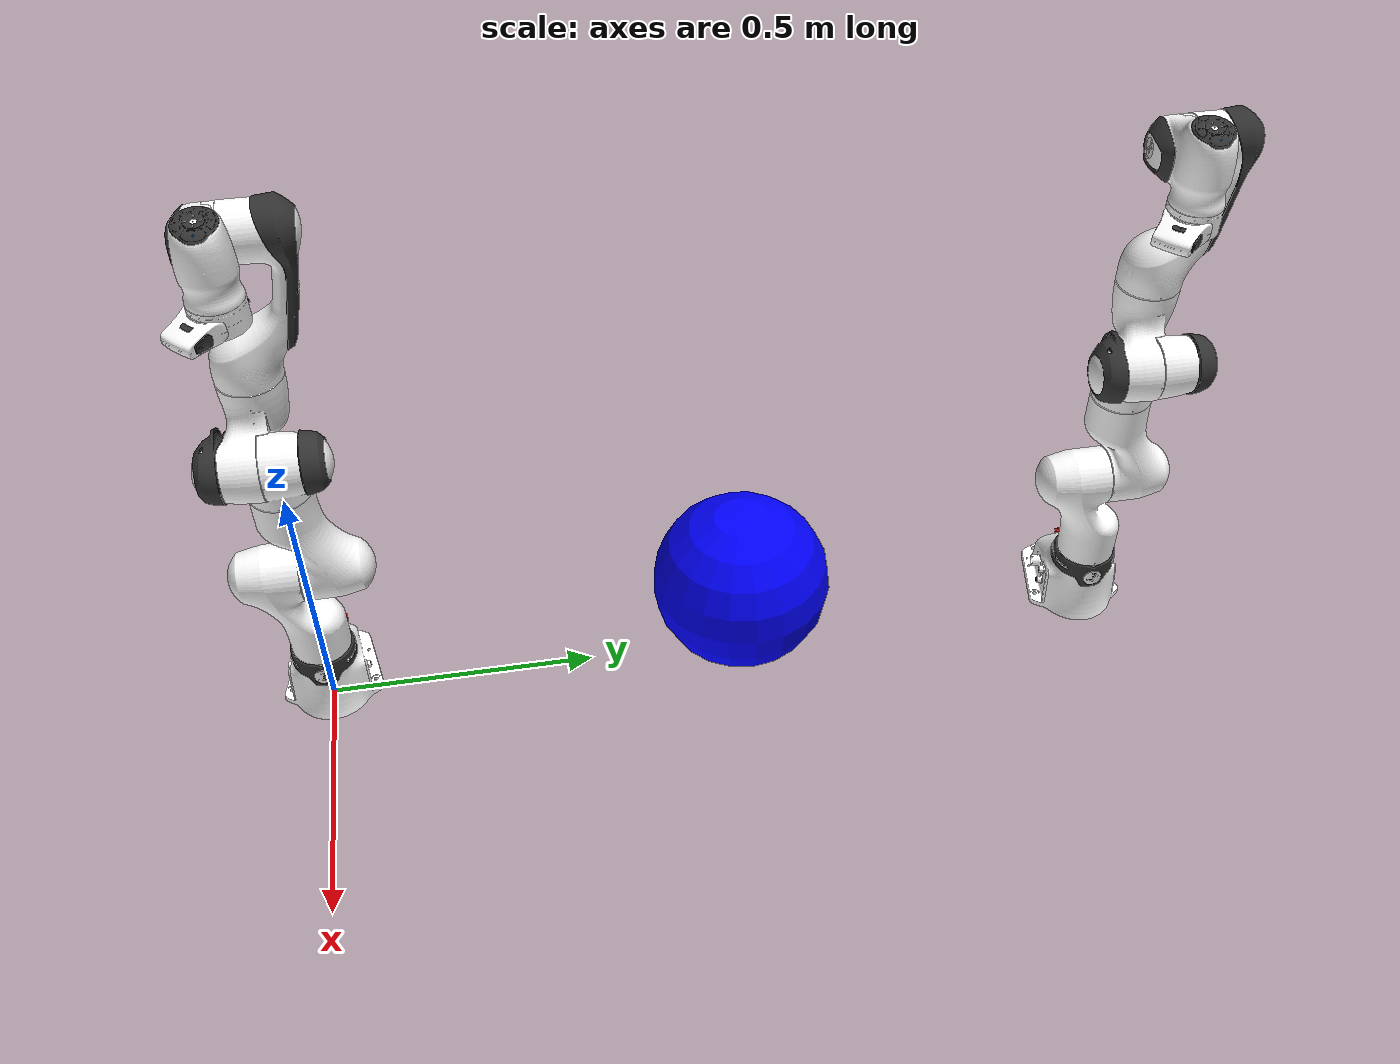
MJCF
<mujoco model="fr3">
  <compiler angle="radian" meshdir="assets"/>

  <!-- Deviations in this file from fr3.xml, which is cited in Citation.txt, are noted below in summary blocks.  -->

  <option integrator="implicitfast"/>

  <default>
    <default class="fr3">
      <!-- Overwritten in joints 5, 6, and 7. -->
      <joint damping="0.21" armature="0.195" frictionloss="1.137"/>
      <position inheritrange="1"/>
      <default class="visual">
        <geom type="mesh" group="2" contype="0" conaffinity="0"/>
      </default>
      <default class="collision">
        <geom type="mesh" group="3" mass="0" density="0"/>
      </default>
      <site size="0.001" rgba="0.5 0.5 0.5 0.3" group="4"/>
    </default>
  </default>

  <asset>
    <material name="black" rgba=".2 .2 .2 1"/>
    <material name="white" rgba="1 1 1 1"/>
    <material name="red" rgba="1 0.072272 0.039546 1"/>
    <material name="gray" rgba="0.863156 0.863156 0.863157 1"/>
    <material name="button_green" rgba="0.102241 0.571125 0.102242 1"/>
    <material name="button_red" rgba="0.520996 0.008023 0.013702 1"/>
    <material name="button_blue" rgba="0.024157 0.445201 0.737911 1"/>

    <mesh file="link0_0.obj"/>
    <mesh file="link0_1.obj"/>
    <mesh file="link0_2.obj"/>
    <mesh file="link0_3.obj"/>
    <mesh file="link0_4.obj"/>
    <mesh file="link0_5.obj"/>
    <mesh file="link0_6.obj"/>
    <mesh file="link1.obj"/>
    <mesh file="link2.obj"/>
    <mesh file="link3_0.obj"/>
    <mesh file="link3_1.obj"/>
    <mesh file="link4_0.obj"/>
    <mesh file="link4_1.obj"/>
    <mesh file="link5_0.obj"/>
    <mesh file="link5_1.obj"/>
    <mesh file="link5_2.obj"/>
    <mesh file="link6_0.obj"/>
    <mesh file="link6_1.obj"/>
    <mesh file="link6_2.obj"/>
    <mesh file="link6_3.obj"/>
    <mesh file="link6_4.obj"/>
    <mesh file="link6_5.obj"/>
    <mesh file="link6_6.obj"/>
    <mesh file="link6_7.obj"/>
    <mesh file="link7_0.obj"/>
    <mesh file="link7_1.obj"/>
    <mesh file="link7_2.obj"/>
    <mesh file="link7_3.obj"/>

    <mesh name="link0_coll" file="link0.stl"/>
    <mesh name="link1_coll" file="link1.stl"/>
    <mesh name="link2_coll" file="link2.stl"/>
    <mesh name="link3_coll" file="link3.stl"/>
    <mesh name="link4_coll" file="link4.stl"/>
    <mesh name="link5_coll" file="link5.stl"/>
    <mesh name="link6_coll" file="link6.stl"/>
    <mesh name="link7_coll" file="link7.stl"/>
  </asset>

  <worldbody>
    <body name="base" childclass="fr3">
      <body name="fr3_link0">
        <geom mesh="link0_0" material="black" class="visual"/>
        <geom mesh="link0_1" material="white" class="visual"/>
        <geom mesh="link0_2" material="white" class="visual"/>
        <geom mesh="link0_3" material="white" class="visual"/>
        <geom mesh="link0_4" material="white" class="visual"/>
        <geom mesh="link0_5" material="red" class="visual"/>
        <geom mesh="link0_6" material="black" class="visual"/>
        <geom name="fr3_link0_collision" mesh="link0_coll" class="collision"/>
        <body name="fr3_link1" pos="0 0 0.333">
          <inertial pos="4.128e-07 -0.0181251 -0.0386036" quat="0.998098 -0.0605364 0.00380499 0.0110109" mass="2.92747"
            diaginertia="0.0239286 0.0227246 0.00610634"/>
          <joint name="fr3_joint1" axis="0 0 1" range="-2.7437 2.7437" actuatorfrcrange="-87 87"/>
          <geom name="fr3_link1_collision" class="collision" mesh="link1_coll"/>
          <geom material="white" mesh="link1" class="visual"/>
          <body name="fr3_link2" quat="1 -1 0 0">
            <inertial pos="0.00318289 -0.0743222 0.00881461" quat="0.502599 0.584437 -0.465998 0.434366" mass="2.93554"
              diaginertia="0.0629567 0.0411924 0.0246371"/>
            <joint name="fr3_joint2" axis="0 0 1" range="-1.7837 1.7837" actuatorfrcrange="-87 87"/>
            <geom material="white" mesh="link2" class="visual"/>
            <geom name="fr3_link2_collision" class="collision" mesh="link2_coll"/>
            <body name="fr3_link3" pos="0 -0.316 0" quat="1 1 0 0">
              <inertial pos="0.0407016 -0.00482006 -0.0289731" quat="0.921025 -0.244161 0.155272 0.260745" mass="2.2449"
                diaginertia="0.0267409 0.0189869 0.0171587"/>
              <joint name="fr3_joint3" axis="0 0 1" range="-2.9007 2.9007" actuatorfrcrange="-87 87"/>
              <geom mesh="link3_0" material="white" class="visual"/>
              <geom mesh="link3_1" material="black" class="visual"/>
              <geom name="fr3_link3_collision" class="collision" mesh="link3_coll"/>
              <body name="fr3_link4" pos="0.0825 0 0" quat="1 1 0 0">
                <inertial pos="-0.0459101 0.0630493 -0.00851879" quat="0.438018 0.803311 0.00937812 0.403414"
                  mass="2.6156" diaginertia="0.05139 0.0372717 0.0160047"/>
                <joint name="fr3_joint4" axis="0 0 1" range="-3.0421 -0.1518" actuatorfrcrange="-87 87"/>
                <geom mesh="link4_0" material="white" class="visual"/>
                <geom mesh="link4_1" material="black" class="visual"/>
                <geom name="fr3_link4_collision" class="collision" mesh="link4_coll"/>
                <body name="fr3_link5" pos="-0.0825 0.384 0" quat="1 -1 0 0">
                  <inertial pos="-0.00160396 0.0292536 -0.0972966" quat="0.919031 0.125604 0.0751531 -0.366003"
                    mass="2.32712" diaginertia="0.0579335 0.0449144 0.0130634"/>
                  <joint name="fr3_joint5" axis="0 0 1" range="-2.8065 2.8065" actuatorfrcrange="-12 12"
                    armature="0.074" frictionloss="0.763"/>
                  <geom mesh="link5_0" material="white" class="visual"/>
                  <geom mesh="link5_1" material="white" class="visual"/>
                  <geom mesh="link5_2" material="black" class="visual"/>
                  <geom name="fr3_link5_collision" class="collision" mesh="link5_coll"/>
                  <body name="fr3_link6" quat="1 1 0 0">
                    <inertial pos="0.0597131 -0.0410295 -0.0101693" quat="0.621301 0.552665 0.510011 0.220081"
                      mass="1.81704" diaginertia="0.0175039 0.0161123 0.00193529"/>
                    <joint name="fr3_joint6" axis="0 0 1" range="0.5445 4.5169" actuatorfrcrange="-12 12"
                      armature="0.074" frictionloss="0.44"/>
                    <geom mesh="link6_0" material="button_green" class="visual"/>
                    <geom mesh="link6_1" material="white" class="visual"/>
                    <geom mesh="link6_2" material="white" class="visual"/>
                    <geom mesh="link6_3" material="gray" class="visual"/>
                    <geom mesh="link6_4" material="button_red" class="visual"/>
                    <geom mesh="link6_5" material="white" class="visual"/>
                    <geom mesh="link6_6" material="black" class="visual"/>
                    <geom mesh="link6_7" material="button_blue" class="visual"/>
                    <geom name="fr3_link6_collision" class="collision" mesh="link6_coll"/>
                    <body name="fr3_link7" pos="0.088 0 0" quat="1 1 0 0">
                      <inertial pos="0.00452258 0.00862619 -0.0161633" quat="0.727579 0.0978688 -0.24906 0.63168"
                        mass="0.627143" diaginertia="0.000223836 0.000223642 5.64132e-07"/>
                      <joint name="fr3_joint7" axis="0 0 1" range="-3.0159 3.0159" actuatorfrcrange="-12 12"
                        armature="0.074" frictionloss="0.248"/>
                      <geom mesh="link7_0" contype = "1" conaffinity = "1" material="black" class="visual"/>
                      <geom mesh="link7_1" contype = "1" conaffinity = "1" material="white" class="visual"/>
                      <geom mesh="link7_2" contype = "1" conaffinity = "1" material="white" class="visual"/>
                      <geom mesh="link7_3" contype = "1" conaffinity = "1" material="black" class="visual"/>
                      <geom name="fr3_link7_collision" contype = "1" conaffinity = "1" class="collision" mesh="link7_coll"/>
                      <site name="attachment_site" pos="0 0 0.107"/>
                    </body>
                  </body>
                </body>
              </body>
            </body>
          </body>
        </body>
      </body>
    </body>

    <body name="base2" childclass="fr3">
      <body name="fr3_link02" pos="0 1.5 0">
        <geom mesh="link0_0" material="black" class="visual"/>
        <geom mesh="link0_1" material="white" class="visual"/>
        <geom mesh="link0_2" material="white" class="visual"/>
        <geom mesh="link0_3" material="white" class="visual"/>
        <geom mesh="link0_4" material="white" class="visual"/>
        <geom mesh="link0_5" material="red" class="visual"/>
        <geom mesh="link0_6" material="black" class="visual"/>
        <geom name="fr3_link0_collision2" mesh="link0_coll" class="collision"/>
        <body name="fr3_link12" pos="0 0 0.333">
          <inertial pos="4.128e-07 -0.0181251 -0.0386036" quat="0.998098 -0.0605364 0.00380499 0.0110109" mass="2.92747"
            diaginertia="0.0239286 0.0227246 0.00610634"/>
          <joint name="fr3_joint12" axis="0 0 1" range="-2.7437 2.7437" actuatorfrcrange="-87 87"/>
          <geom name="fr3_link1_collision2" class="collision" mesh="link1_coll"/>
          <geom material="white" mesh="link1" class="visual"/>
          <body name="fr3_link22" quat="1 -1 0 0">
            <inertial pos="0.00318289 -0.0743222 0.00881461" quat="0.502599 0.584437 -0.465998 0.434366" mass="2.93554"
              diaginertia="0.0629567 0.0411924 0.0246371"/>
            <joint name="fr3_joint22" axis="0 0 1" range="-1.7837 1.7837" actuatorfrcrange="-87 87"/>
            <geom material="white" mesh="link2" class="visual"/>
            <geom name="fr3_link2_collision2" class="collision" mesh="link2_coll"/>
            <body name="fr3_link32" pos="0 -0.316 0" quat="1 1 0 0">
              <inertial pos="0.0407016 -0.00482006 -0.0289731" quat="0.921025 -0.244161 0.155272 0.260745" mass="2.2449"
                diaginertia="0.0267409 0.0189869 0.0171587"/>
              <joint name="fr3_joint32" axis="0 0 1" range="-2.9007 2.9007" actuatorfrcrange="-87 87"/>
              <geom mesh="link3_0" material="white" class="visual"/>
              <geom mesh="link3_1" material="black" class="visual"/>
              <geom name="fr3_link3_collision2" class="collision" mesh="link3_coll"/>
              <body name="fr3_link42" pos="0.0825 0 0" quat="1 1 0 0">
                <inertial pos="-0.0459101 0.0630493 -0.00851879" quat="0.438018 0.803311 0.00937812 0.403414"
                  mass="2.6156" diaginertia="0.05139 0.0372717 0.0160047"/>
                <joint name="fr3_joint42" axis="0 0 1" range="-3.0421 -0.1518" actuatorfrcrange="-87 87"/>
                <geom mesh="link4_0" material="white" class="visual"/>
                <geom mesh="link4_1" material="black" class="visual"/>
                <geom name="fr3_link4_collision2" class="collision" mesh="link4_coll"/>
                <body name="fr3_link52" pos="-0.0825 0.384 0" quat="1 -1 0 0">
                  <inertial pos="-0.00160396 0.0292536 -0.0972966" quat="0.919031 0.125604 0.0751531 -0.366003"
                    mass="2.32712" diaginertia="0.0579335 0.0449144 0.0130634"/>
                  <joint name="fr3_joint52" axis="0 0 1" range="-2.8065 2.8065" actuatorfrcrange="-12 12"
                    armature="0.074" frictionloss="0.763"/>
                  <geom mesh="link5_0" material="white" class="visual"/>
                  <geom mesh="link5_1" material="white" class="visual"/>
                  <geom mesh="link5_2" material="black" class="visual"/>
                  <geom name="fr3_link5_collision2" class="collision" mesh="link5_coll"/>
                  <body name="fr3_link62" quat="1 1 0 0">
                    <inertial pos="0.0597131 -0.0410295 -0.0101693" quat="0.621301 0.552665 0.510011 0.220081"
                      mass="1.81704" diaginertia="0.0175039 0.0161123 0.00193529"/>
                    <joint name="fr3_joint62" axis="0 0 1" range="0.5445 4.5169" actuatorfrcrange="-12 12"
                      armature="0.074" frictionloss="0.44"/>
                    <geom mesh="link6_0" material="button_green" class="visual"/>
                    <geom mesh="link6_1" material="white" class="visual"/>
                    <geom mesh="link6_2" material="white" class="visual"/>
                    <geom mesh="link6_3" material="gray" class="visual"/>
                    <geom mesh="link6_4" material="button_red" class="visual"/>
                    <geom mesh="link6_5" material="white" class="visual"/>
                    <geom mesh="link6_6" material="black" class="visual"/>
                    <geom mesh="link6_7" material="button_blue" class="visual"/>
                    <geom name="fr3_link6_collision2" class="collision" mesh="link6_coll"/>
                    <body name="fr3_link72" pos="0.088 0 0" quat="1 1 0 0">
                      <inertial pos="0.00452258 0.00862619 -0.0161633" quat="0.727579 0.0978688 -0.24906 0.63168"
                        mass="0.627143" diaginertia="0.000223836 0.000223642 5.64132e-07"/>
                      <joint name="fr3_joint72" axis="0 0 1" range="-3.0159 3.0159" actuatorfrcrange="-12 12"
                        armature="0.074" frictionloss="0.248"/>
                      <geom mesh="link7_0" contype = "1" conaffinity = "1" material="black" class="visual"/>
                      <geom mesh="link7_1" contype = "1" conaffinity = "1" material="white" class="visual"/>
                      <geom mesh="link7_2" contype = "1" conaffinity = "1" material="white" class="visual"/>
                      <geom mesh="link7_3" contype = "1" conaffinity = "1" material="black" class="visual"/>
                      <geom name="fr3_link7_collision2" contype = "1" conaffinity = "1" class="collision" mesh="link7_coll"/>
                      <site name="attachment_site2" pos="0 0 0.107"/>
                    </body>
                  </body>
                </body>
              </body>
            </body>
          </body>
        </body>
      </body>
    </body>

     <!-- This sphere addition is an addition to the original fr3.xml file. See Citation2.txt for more information.  -->
     <body name = "sphere">
            <geom type="sphere" contype = "1" conaffinity = "1" rgba="0 0 1 1" size = "0.17" pos = "0 0.8 0.17" friction = "3.5 0 0" mass = "10"/>
            <joint type = "free"  name = "sphere_joint" stiffness="1" damping="1" frictionloss="0.2" armature="0"/>
            <site name="sphere_site" pos="0 0.8 0.17"/>
     </body>
  </worldbody>

  <!-- As a deviation (as legal) from the initial cited file, additional actuators have been added for the second arm, and for the sphere. -->

  <actuator>
    <position class="fr3" name="fr3_joint1" joint="fr3_joint1" kp="4500" kv="450"/>
    <position class="fr3" name="fr3_joint2" joint="fr3_joint2" kp="4500" kv="450"/>
    <position class="fr3" name="fr3_joint3" joint="fr3_joint3" kp="3500" kv="350"/>
    <position class="fr3" name="fr3_joint4" joint="fr3_joint4" kp="3500" kv="350"/>
    <position class="fr3" name="fr3_joint5" joint="fr3_joint5" kp="2000" kv="200"/>
    <position class="fr3" name="fr3_joint6" joint="fr3_joint6" kp="2000" kv="200"/>
    <position class="fr3" name="fr3_joint7" joint="fr3_joint7" kp="2000" kv="200"/>
    <position class="fr3" name="fr3_joint12" joint="fr3_joint12" kp="4500" kv="450"/>
    <position class="fr3" name="fr3_joint22" joint="fr3_joint22" kp="4500" kv="450"/>
    <position class="fr3" name="fr3_joint32" joint="fr3_joint32" kp="3500" kv="350"/>
    <position class="fr3" name="fr3_joint42" joint="fr3_joint42" kp="3500" kv="350"/>
    <position class="fr3" name="fr3_joint52" joint="fr3_joint52" kp="2000" kv="200"/>
    <position class="fr3" name="fr3_joint62" joint="fr3_joint62" kp="2000" kv="200"/>
    <position class="fr3" name="fr3_joint72" joint="fr3_joint72" kp="2000" kv="200"/>
    <position name = "sphere_joint" joint= "sphere_joint" kp="2000" kv="0"/>
  </actuator>

  <!-- An additional mirrored contact exclusion has been added for the second arm, which is a deviation from the initial file. -->

  <contact>
    <exclude body1="fr3_link0" body2="fr3_link1"/>
    <exclude body1="fr3_link02" body2="fr3_link12"/>
  </contact>

  <!-- The initial qpos and ctrl have been modified to account for the second arm,
       and no defaults are included here for the free joint corresponding to the sphere.
  -->

  <keyframe>
    <key name="home" qpos="0 0 0 -1.57079 0 1.57079 -0.7853 0 0 0 -1.57079 0 1.57079 -0.7853" ctrl="0 0 0 -1.57079 0 1.57079 -0.7853 0 0 0 -1.57079 0 1.57079 -0.7853"/>
  </keyframe>
</mujoco>
